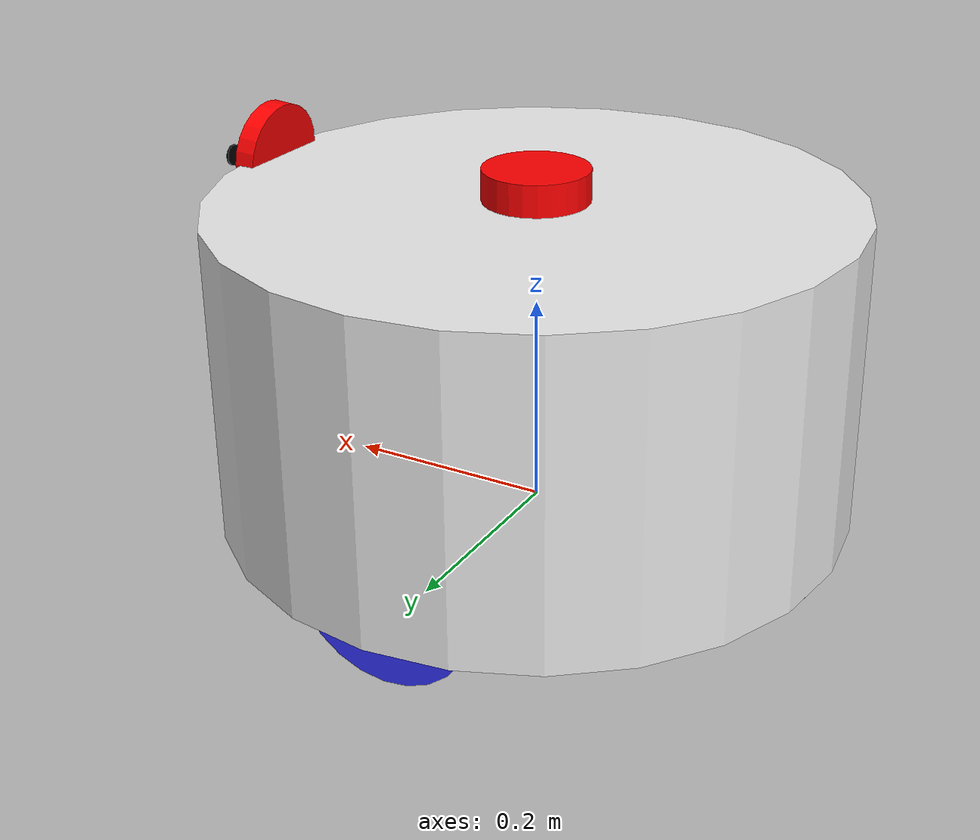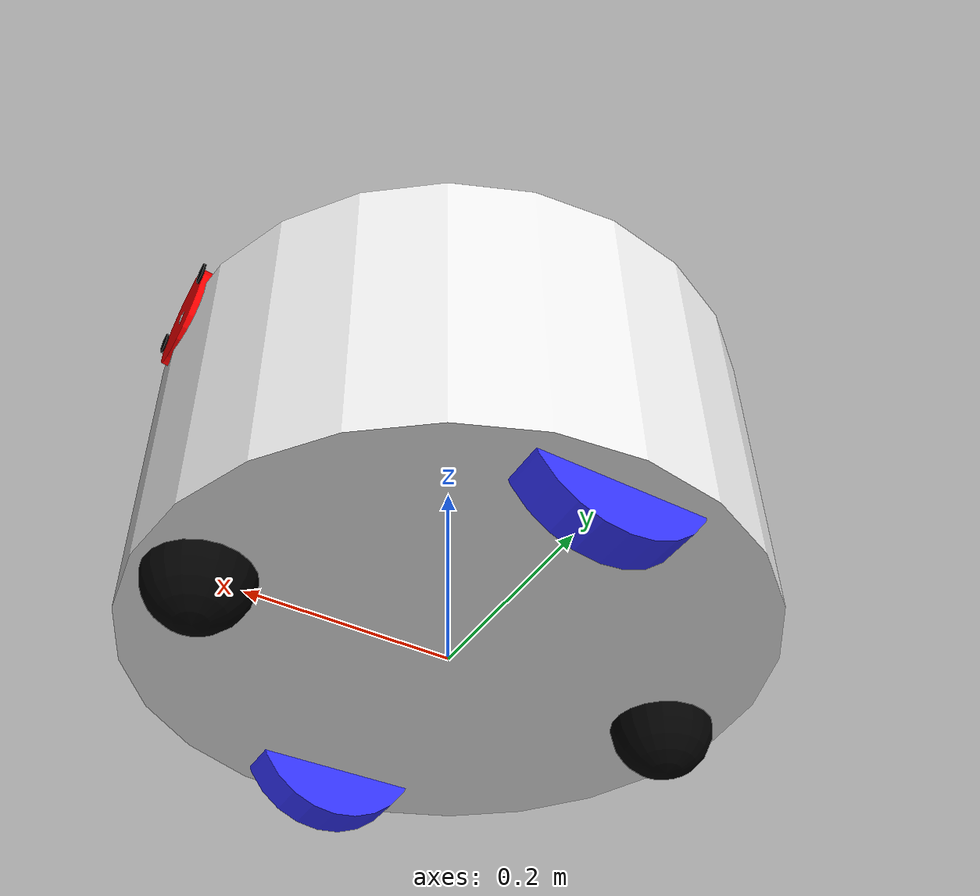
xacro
<?xml version="1.0"?>
<robot name="ros_bot">

 <material name="white">
        <color rgba="1 1 1 1"/>
   </material>

   <material name="orange">
        <color rgba="1 0.3 0.1 1"/>
   </material>

    <material name="blue">
        <color rgba="0.2 0.2 1 1"/>
   </material>

   <material name="black">
        <color rgba="0 0 0 1"/>
   </material>

     <material name="red">
        <color rgba="1 0 0 1"/>
   </material>
   <!-- BASE LINK -->

   <link name="base_link">

   </link>

   <!-- CHASSIS LINK -->

   <joint name="chassis_joint" type="fixed">
       <parent link="base_link"/>
       <child link="chassis"/>
       <origin xyz="0 0 0.15" />
   </joint>

   <link name="chassis">
      <visual>
          <geometry>
                <cylinder radius="0.3" length="0.3"/>
                <material name="white"/>
          </geometry>
      </visual>
      <collision>
          <geometry>
                <cylinder radius="0.3" length="0.3"/>
          </geometry>
      </collision>
      <inertial>
          <mass value="0.3"/>
          <origin xyz="0.0 0.0 0.0" rpy="0.0 0.0 0.0" />
          <inertia ixx="0.005" ixy="0.0" ixz="0.0" iyy="0.005" iyz="0.0" izz="0.01"/>
      </inertial>

   </link>

   <gazebo reference="chassis">
       <material>Gazebo/White</material>
   </gazebo>

   <!-- LEFT WHEEL LINK -->

   <joint name="left_wheel_joint" type="continuous">
        <parent link="base_link"/>
        <child link="left_wheel"/>
        <origin xyz="0 0.25 0.04" rpy="-${pi/2} 0 0"/>
        <axis xyz="0 0 1"/>
   </joint>

   <link name="left_wheel">
      <visual>
         <geometry>
             <cylinder radius="0.09" length="0.04"/>
        </geometry>
        <material name="blue"/>
      </visual>
      <collision>
         <geometry>
             <cylinder radius="0.09" length="0.04"/>
        </geometry>
      </collision>
      <inertial>
          <mass value="0.1"/>
          <origin xyz="0.0 0.0 0.0" rpy="0.0 0.0 0.0" />
          <inertia ixx="0.001" ixy="0.0" ixz="0.0" iyy="0.001" iyz="0.0" izz="0.001"/>
      </inertial>

   </link>

   <gazebo reference="left_wheel">
       <material>Gazebo/Blue</material>
   </gazebo>
   <!-- RIGHT WHEEL LINK -->

   <joint name="right_wheel_joint" type="continuous">
        <parent link="base_link"/>
        <child link="right_wheel"/>
        <origin xyz="0 -0.25 0.04" rpy="${pi/2} 0 0"/>
        <axis xyz="0 0 -1"/>
   </joint>

   <link name="right_wheel">
      <visual>
         <geometry>
             <cylinder radius="0.09" length="0.04"/>
        </geometry>
        <material name="blue"/>
      </visual>
      <collision>
         <geometry>
             <cylinder radius="0.09" length="0.04"/>
        </geometry>
      </collision>
     <inertial>
          <mass value="0.1"/>
          <origin xyz="0.0 0.0 0.0" rpy="0.0 0.0 0.0" />
          <inertia ixx="0.001" ixy="0.0" ixz="0.0" iyy="0.001" iyz="0.0" izz="0.001"/>
      </inertial>

   </link>

   <gazebo reference="right_wheel">
       <material>Gazebo/Blue</material>
   </gazebo>
   <!-- CASTER FRONT WHEEL -->

   <joint name="caster_front_joint" type="fixed">
       <parent link="chassis"/>
       <child link="caster_front_wheel"/>
       <origin xyz="0.24 0.0 -0.15"/>
   </joint>

   <link name="caster_front_wheel">
       <visual>
          <geometry>
              <sphere radius="0.05"/>
          </geometry>
          <material name="black"/>
       </visual>
       <collision>
          <geometry>
              <sphere radius="0.05"/>
          </geometry>
       </collision>
       <inertial>
          <mass value="0.1"/>
          <origin xyz="0.0 0.0 0.0" rpy="0.0 0.0 0.0" />
          <inertia ixx="0.001" ixy="0.0" ixz="0.0" iyy="0.001" iyz="0.0" izz="0.001"/>
       </inertial>
   </link>

   <gazebo reference="caster_front_wheel">
       <material>Gazebo/Black</material>
       <mu1 value="0.001"/>
       <mu2 value="0.001"/>
   </gazebo>

   <!-- CASTER REAR WHEEL -->

   <joint name="caster_rear_joint" type="fixed">
       <parent link="chassis"/>
       <child link="caster_rear_wheel"/>
       <origin xyz="-0.24 0.0 -0.15"/>
   </joint>

   <link name="caster_rear_wheel">
       <visual>
          <geometry>
              <sphere radius="0.05"/>
          </geometry>
          <material name="black"/>
       </visual>
       <collision>
          <geometry>
              <sphere radius="0.05"/>
          </geometry>
       </collision>
       <inertial>
          <mass value="0.1"/>
          <origin xyz="0.0 0.0 0.0" rpy="0.0 0.0 0.0" />
          <inertia ixx="0.001" ixy="0.0" ixz="0.0" iyy="0.001" iyz="0.0" izz="0.001"/>
       </inertial>
   </link>

   <gazebo reference="caster_rear_wheel">
       <material>Gazebo/Black</material>
             <mu1 value="0.001"/>
       <mu2 value="0.001"/>
   </gazebo>

<!-- face -->

    <joint name="face_joint" type="fixed">
        <parent link="chassis"/>
        <child link="face_link"/>
        <origin xyz="${0.3} 0 ${0.3/2}" rpy="0 0 0"/>
    </joint>

    <link name="face_link">
        <visual>
            <origin xyz="0 0.05 0.01" rpy="0 ${pi/2} 0"/>
            <geometry>
                <cylinder radius="0.01" length="0.002"/>
            </geometry>
            <material name="black"/>
        </visual>

        <visual>
            <origin xyz="0 -0.05 0.01" rpy="0 ${pi/2} 0"/>
            <geometry>
                <cylinder radius="0.01" length="0.002"/>
            </geometry>
            <material name="black"/>
        </visual>

        <visual>
            <origin xyz="-0.011 0 -0.00" rpy="0 ${1.5} 0"/>
            <geometry>
                <cylinder radius="0.05" length="0.02"/>
            </geometry>
            <material name="red"/>
        </visual>
    </link>

    <gazebo reference="face_link">
        <material>Gazebo/Black</material>
    </gazebo>

   <!-- LD19 LIDAR -->
   <joint name="lidar_joint" type="fixed">
       <parent link="chassis"/>
       <child link="lidar"/>
       <origin xyz="0.0 0.0 0.16" rpy="0 0 0"/>
   </joint>

   <link name="lidar">
       <visual>
          <geometry>

             <cylinder radius="0.05" length="0.04"/>

          </geometry>
          <material name="red"/>
       </visual>
       <collision>
          <geometry>
            <cylinder radius="0.05" length="0.04"/>

          </geometry>
       </collision>
       <inertial>
          <mass value="0.1"/>
          <origin xyz="0.0 0.0 0.0" rpy="0.0 0.0 0.0" />
          <inertia ixx="0.001" ixy="0.0" ixz="0.0" iyy="0.001" iyz="0.0" izz="0.001"/>
       </inertial>
   </link>

    <gazebo reference="lidar">
        <sensor name="laser" type="ray">
         <pose> 0 0 0 0 0 0 </pose>
         <visualize>true</visualize>
         <update_rate>10</update_rate>
         <ray>
            <scan>
               <horizontal>
                  <samples>360</samples>
                  <resolution>1</resolution>
                  <min_angle>-3.14</min_angle>
                  <max_angle>3.14</max_angle>
               </horizontal>
            </scan>
            <range>
                  <min>0.3</min>
                  <max>12</max>
                  <resolution>0.01</resolution>
            </range>
         </ray>
         <plugin name="laser_controller" filename="libgazebo_ros_ray_sensor.so">
              <ros>
                 <argument>~/out:=scan</argument>
              </ros>
              <output_type>sensor_msgs/LaserScan</output_type>
              <frame_name>laser_frame</frame_name>
         </plugin>
        </sensor>
       <material>Gazebo/Red</material>
   </gazebo>

       <gazebo>
        <plugin name="diff_drive" filename="libgazebo_ros_diff_drive.so">

            <!-- Wheel Information -->
            <left_joint>left_wheel_joint</left_joint>
            <right_joint>right_wheel_joint</right_joint>
            <wheel_separation>0.5</wheel_separation>
            <wheel_diameter>0.18</wheel_diameter>

            <!-- Limits -->
            <max_wheel_torque>200</max_wheel_torque>
            <max_wheel_acceleration>10.0</max_wheel_acceleration>

            <!-- Output -->
            <odometry_frame>odom</odometry_frame>
            <robot_base_frame>base_link</robot_base_frame>

            <publish_odom>true</publish_odom>
            <publish_odom_tf>true</publish_odom_tf>
            <publish_wheel_tf>true</publish_wheel_tf>

        </plugin>
    </gazebo>

</robot>
